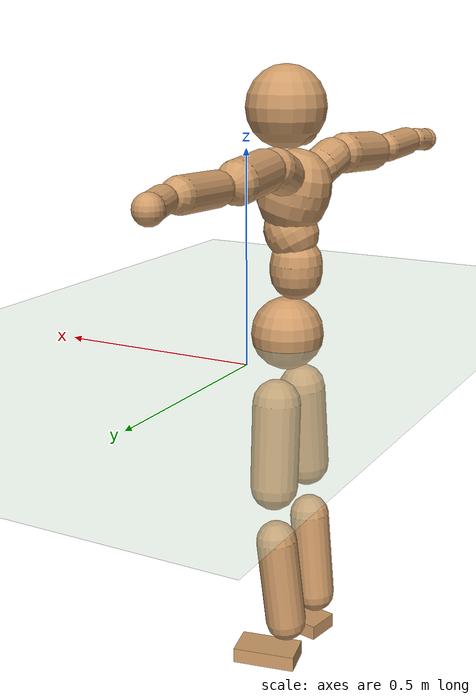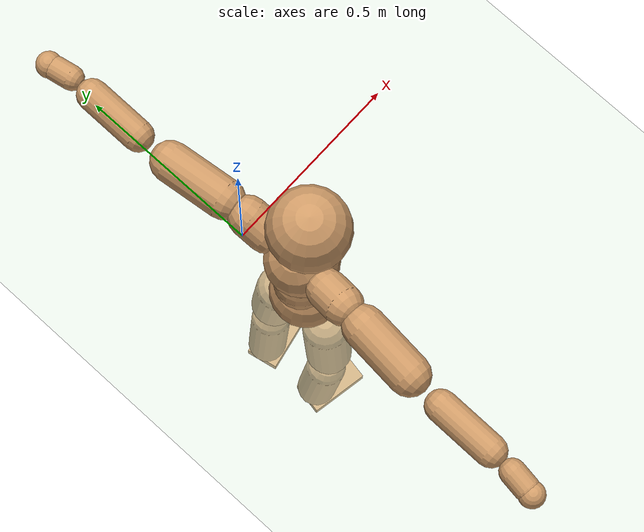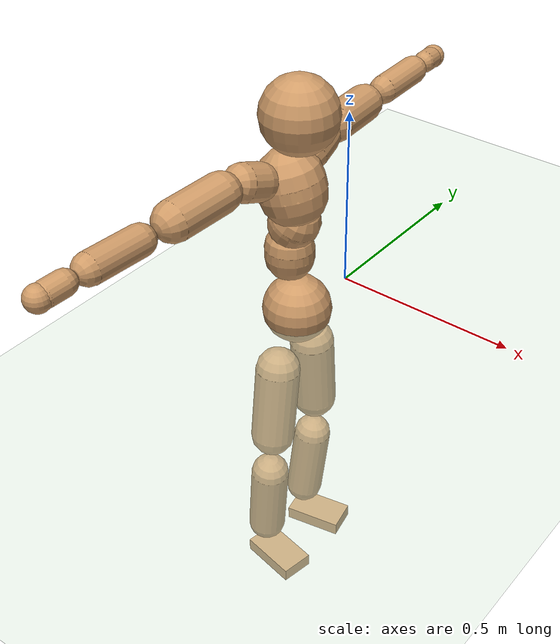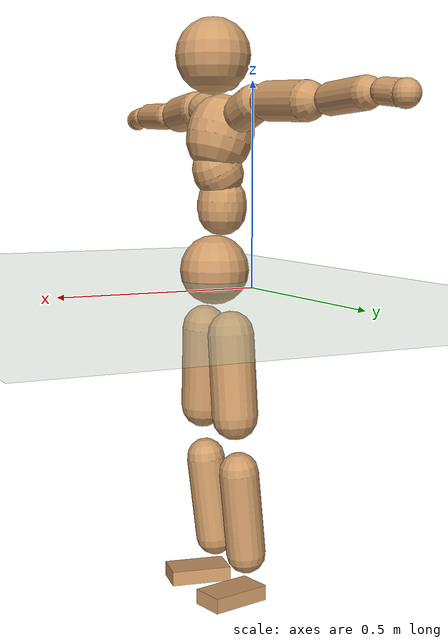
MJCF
<mujoco model="humanoid">
  <compiler coordinate="local"/>
  <default>
    <joint damping="0.0" armature="0.01" stiffness="0.0" limited="true"/>
    <geom conaffinity="1" condim="3" contype="7" margin="0.001" rgba="0.8 0.6 .4 1"/>
  </default>
  <asset>
    <texture type="skybox" builtin="gradient" rgb1=".4 .5 .6" rgb2="0 0 0" width="100" height="100"/>
    <texture builtin="flat" height="1278" mark="cross" markrgb="1 1 1" name="texgeom" random="0.01" rgb1="0.8 0.6 0.4" rgb2="0.8 0.6 0.4" type="cube" width="127"/>
    <texture builtin="checker" height="100" name="texplane" rgb1="0 0 0" rgb2="0.8 0.8 0.8" type="2d" width="100"/>
    <material name="MatPlane" reflectance="0.5" shininess="1" specular="1" texrepeat="60 60" texture="texplane"/>
    <material name="geom" texture="texgeom" texuniform="true"/>
  </asset>
  <worldbody>
    <light cutoff="100" diffuse="1 1 1" dir="-0 0 -1.3" directional="true" exponent="1" pos="0 0 1.3" specular=".1 .1 .1"/>
    <geom conaffinity="1" condim="3" name="floor" pos="0 0 0" rgba="0.8 0.9 0.8 1" size="100 100 .2" type="plane" material="MatPlane"/>
    <body name="Pelvis" pos="-0.001 -0.2126 0.0267">
      <freejoint name="Pelvis"/>
      <geom type="sphere" contype="1" conaffinity="1" density="500" size="0.0916" pos="0.0000 0.0000 0.0000" name="Pelvis"/>
      <body name="L_Hip" pos="-0.0085 0.0704 -0.0893">
        <joint name="L_Hip_x" type="hinge" pos="0 0 0" axis="1 0 0" stiffness="800" damping="80" armature="0.02" range="-180.0000 180.0000"/>
        <joint name="L_Hip_y" type="hinge" pos="0 0 0" axis="0 1 0" stiffness="800" damping="80" armature="0.02" range="-180.0000 180.0000"/>
        <joint name="L_Hip_z" type="hinge" pos="0 0 0" axis="0 0 1" stiffness="800" damping="80" armature="0.02" range="-180.0000 180.0000"/>
        <geom type="capsule" contype="1" conaffinity="1" density="500" fromto="-0.0013 0.0061 -0.0722 -0.0051 0.0243 -0.2889" size="0.0604" name="L_Hip"/>
        <body name="L_Knee" pos="-0.0064 0.0304 -0.3611">
          <joint name="L_Knee_x" type="hinge" pos="0 0 0" axis="1 0 0" stiffness="800" damping="80" armature="0.02" range="-180.0000 180.0000"/>
          <joint name="L_Knee_y" type="hinge" pos="0 0 0" axis="0 1 0" stiffness="800" damping="80" armature="0.02" range="-180.0000 180.0000"/>
          <joint name="L_Knee_z" type="hinge" pos="0 0 0" axis="0 0 1" stiffness="800" damping="80" armature="0.02" range="-180.0000 180.0000"/>
          <geom type="capsule" contype="1" conaffinity="1" density="500" fromto="-0.0086 -0.0023 -0.0759 -0.0342 -0.0092 -0.3035" size="0.0523" name="L_Knee"/>
          <body name="L_Ankle" pos="-0.0428 -0.0115 -0.3794">
            <joint name="L_Ankle_x" type="hinge" pos="0 0 0" axis="1 0 0" stiffness="800" damping="80" armature="0.02" range="-180.0000 180.0000"/>
            <joint name="L_Ankle_y" type="hinge" pos="0 0 0" axis="0 1 0" stiffness="800" damping="80" armature="0.02" range="-180.0000 180.0000"/>
            <joint name="L_Ankle_z" type="hinge" pos="0 0 0" axis="0 0 1" stiffness="800" damping="80" armature="0.02" range="-180.0000 180.0000"/>
            <geom type="box" contype="1" conaffinity="1" density="500" pos="0.0568 0.0115 -0.0271" size="0.0813 0.0452 0.0199" quat="0.9951 0.0000 0.0000 0.0993" name="L_Ankle"/>
            <body name="L_Toe" pos="0.1136 0.0229 -0.0541">
              <joint name="L_Toe_x" type="hinge" pos="0 0 0" axis="1 0 0" stiffness="500" damping="50" armature="0.02" range="-180.0000 180.0000"/>
              <joint name="L_Toe_y" type="hinge" pos="0 0 0" axis="0 1 0" stiffness="500" damping="50" armature="0.02" range="-180.0000 180.0000"/>
              <joint name="L_Toe_z" type="hinge" pos="0 0 0" axis="0 0 1" stiffness="500" damping="50" armature="0.02" range="-180.0000 180.0000"/>
              <geom type="box" contype="1" conaffinity="1" density="500" pos="0.0000 0.0000 0.0265" size="0.0009 0.0023 0.001" quat="0.9944 0.0000 0.0000 0.1059" name="L_Toe"/>
            </body>
          </body>
        </body>
      </body>
      <body name="R_Hip" pos="-0.0053 -0.068 -0.0887">
        <joint name="R_Hip_x" type="hinge" pos="0 0 0" axis="1 0 0" stiffness="800" damping="80" armature="0.02" range="-180.0000 180.0000"/>
        <joint name="R_Hip_y" type="hinge" pos="0 0 0" axis="0 1 0" stiffness="800" damping="80" armature="0.02" range="-180.0000 180.0000"/>
        <joint name="R_Hip_z" type="hinge" pos="0 0 0" axis="0 0 1" stiffness="800" damping="80" armature="0.02" range="-180.0000 180.0000"/>
        <geom type="capsule" contype="1" conaffinity="1" density="500" fromto="-0.0018 -0.0071 -0.0735 -0.0071 -0.0286 -0.2942" size="0.0597" name="R_Hip"/>
        <body name="R_Knee" pos="-0.0089 -0.0357 -0.3677">
          <joint name="R_Knee_x" type="hinge" pos="0 0 0" axis="1 0 0" stiffness="800" damping="80" armature="0.02" range="-180.0000 180.0000"/>
          <joint name="R_Knee_y" type="hinge" pos="0 0 0" axis="0 1 0" stiffness="800" damping="80" armature="0.02" range="-180.0000 180.0000"/>
          <joint name="R_Knee_z" type="hinge" pos="0 0 0" axis="0 0 1" stiffness="800" damping="80" armature="0.02" range="-180.0000 180.0000"/>
          <geom type="capsule" contype="1" conaffinity="1" density="500" fromto="-0.0082 0.0028 -0.0759 -0.0329 0.0113 -0.3037" size="0.0526" name="R_Knee"/>
          <body name="R_Ankle" pos="-0.0411 0.0141 -0.3796">
            <joint name="R_Ankle_x" type="hinge" pos="0 0 0" axis="1 0 0" stiffness="800" damping="80" armature="0.02" range="-180.0000 180.0000"/>
            <joint name="R_Ankle_y" type="hinge" pos="0 0 0" axis="0 1 0" stiffness="800" damping="80" armature="0.02" range="-180.0000 180.0000"/>
            <joint name="R_Ankle_z" type="hinge" pos="0 0 0" axis="0 0 1" stiffness="800" damping="80" armature="0.02" range="-180.0000 180.0000"/>
            <geom type="box" contype="1" conaffinity="1" density="500" pos="0.0585 -0.0107 -0.0229" size="0.0824 0.0458 0.0196" quat="0.9959 0.0000 0.0000 -0.0901" name="R_Ankle"/>
            <body name="R_Toe" pos="0.1171 -0.0214 -0.0459">
              <joint name="R_Toe_x" type="hinge" pos="0 0 0" axis="1 0 0" stiffness="500" damping="50" armature="0.02" range="-180.0000 180.0000"/>
              <joint name="R_Toe_y" type="hinge" pos="0 0 0" axis="0 1 0" stiffness="500" damping="50" armature="0.02" range="-180.0000 180.0000"/>
              <joint name="R_Toe_z" type="hinge" pos="0 0 0" axis="0 0 1" stiffness="500" damping="50" armature="0.02" range="-180.0000 180.0000"/>
              <geom type="box" contype="1" conaffinity="1" density="500" pos="0.0000 0.0000 0.0249" size="0.0009 0.0023 0.0011" quat="0.9968 0.0000 0.0000 -0.0805" name="R_Toe"/>
            </body>
          </body>
        </body>
      </body>
      <body name="Torso" pos="-0.0214 -0.0026 0.1028">
        <joint name="Torso_x" type="hinge" pos="0 0 0" axis="1 0 0" stiffness="1000" damping="100" armature="0.02" range="-180.0000 180.0000"/>
        <joint name="Torso_y" type="hinge" pos="0 0 0" axis="0 1 0" stiffness="1000" damping="100" armature="0.02" range="-180.0000 180.0000"/>
        <joint name="Torso_z" type="hinge" pos="0 0 0" axis="0 0 1" stiffness="1000" damping="100" armature="0.02" range="-180.0000 180.0000"/>
        <geom type="capsule" contype="1" conaffinity="1" density="500" fromto="-0.0007 0.0022 0.0773 -0.0005 0.0015 0.0515" size="0.065007" name="Torso"/>
        <body name="Spine" pos="-0.0012 0.0037 0.1288">
          <joint name="Spine_x" type="hinge" pos="0 0 0" axis="1 0 0" stiffness="1000" damping="100" armature="0.02" range="-180.0000 180.0000"/>
          <joint name="Spine_y" type="hinge" pos="0 0 0" axis="0 1 0" stiffness="1000" damping="100" armature="0.02" range="-180.0000 180.0000"/>
          <joint name="Spine_z" type="hinge" pos="0 0 0" axis="0 0 1" stiffness="1000" damping="100" armature="0.02" range="-180.0000 180.0000"/>
          <geom type="capsule" contype="1" conaffinity="1" density="500" fromto="0.0167 0.0013 0.0296 0.0111 0.0008 0.0197" size="0.065751" name="Spine"/>
          <body name="Chest" pos="0.0278 0.0021 0.0493">
            <joint name="Chest_x" type="hinge" pos="0 0 0" axis="1 0 0" stiffness="1000" damping="100" armature="0.02" range="-180.0000 180.0000"/>
            <joint name="Chest_y" type="hinge" pos="0 0 0" axis="0 1 0" stiffness="1000" damping="100" armature="0.02" range="-180.0000 180.0000"/>
            <joint name="Chest_z" type="hinge" pos="0 0 0" axis="0 0 1" stiffness="1000" damping="100" armature="0.02" range="-180.0000 180.0000"/>
            <geom type="capsule" contype="1" conaffinity="1" density="500" fromto="-0.0255 -0.0007 0.0879 -0.0170 -0.0005 0.0586" size="0.08742" name="Chest"/>
            <body name="Neck" pos="-0.0493 -0.0018 0.2073">
              <joint name="Neck_x" type="hinge" pos="0 0 0" axis="1 0 0" stiffness="500" damping="50" armature="0.02" range="-180.0000 180.0000"/>
              <joint name="Neck_y" type="hinge" pos="0 0 0" axis="0 1 0" stiffness="500" damping="50" armature="0.02" range="-180.0000 180.0000"/>
              <joint name="Neck_z" type="hinge" pos="0 0 0" axis="0 0 1" stiffness="500" damping="50" armature="0.02" range="-180.0000 180.0000"/>
              <geom type="capsule" contype="1" conaffinity="1" density="500" fromto="0.0101 0.0007 0.0126 0.0405 0.0029 0.0502" size="0.038037" name="Neck"/>
              <body name="Head" pos="0.0506 0.0037 0.0628">
                <joint name="Head_x" type="hinge" pos="0 0 0" axis="1 0 0" stiffness="500" damping="50" armature="0.02" range="-180.0000 180.0000"/>
                <joint name="Head_y" type="hinge" pos="0 0 0" axis="0 1 0" stiffness="500" damping="50" armature="0.02" range="-180.0000 180.0000"/>
                <joint name="Head_z" type="hinge" pos="0 0 0" axis="0 0 1" stiffness="500" damping="50" armature="0.02" range="-180.0000 180.0000"/>
                <geom type="sphere" contype="1" conaffinity="1" density="500" size="0.0981" pos="0.0000 0.0000 0.0000" name="Head"/>
              </body>
            </body>
            <body name="L_Thorax" pos="-0.0366 0.0754 0.1173">
              <joint name="L_Thorax_x" type="hinge" pos="0 0 0" axis="1 0 0" stiffness="500" damping="50" armature="0.02" range="-180.0000 180.0000"/>
              <joint name="L_Thorax_y" type="hinge" pos="0 0 0" axis="0 1 0" stiffness="500" damping="50" armature="0.02" range="-180.0000 180.0000"/>
              <joint name="L_Thorax_z" type="hinge" pos="0 0 0" axis="0 0 1" stiffness="500" damping="50" armature="0.02" range="-180.0000 180.0000"/>
              <geom type="capsule" contype="1" conaffinity="1" density="500" fromto="-0.0015 0.0171 0.0063 -0.0058 0.0682 0.0251" size="0.0493" name="L_Thorax"/>
              <body name="L_Shoulder" pos="-0.0073 0.0853 0.0313">
                <joint name="L_Shoulder_x" type="hinge" pos="0 0 0" axis="1 0 0" stiffness="500" damping="50" armature="0.02" range="-720.0000 720.0000"/>
                <joint name="L_Shoulder_y" type="hinge" pos="0 0 0" axis="0 1 0" stiffness="500" damping="50" armature="0.02" range="-720.0000 720.0000"/>
                <joint name="L_Shoulder_z" type="hinge" pos="0 0 0" axis="0 0 1" stiffness="500" damping="50" armature="0.02" range="-720.0000 720.0000"/>
                <geom type="capsule" contype="1" conaffinity="1" density="500" fromto="-0.0054 0.0498 -0.0023 -0.0218 0.1994 -0.0092" size="0.0492" name="L_Shoulder"/>
                <body name="L_Elbow" pos="-0.0272 0.2492 -0.0115">
                  <joint name="L_Elbow_x" type="hinge" pos="0 0 0" axis="1 0 0" stiffness="500" damping="50" armature="0.02" range="-720.0000 720.0000"/>
                  <joint name="L_Elbow_y" type="hinge" pos="0 0 0" axis="0 1 0" stiffness="500" damping="50" armature="0.02" range="-720.0000 720.0000"/>
                  <joint name="L_Elbow_z" type="hinge" pos="0 0 0" axis="0 0 1" stiffness="500" damping="50" armature="0.02" range="-720.0000 720.0000"/>
                  <geom type="capsule" contype="1" conaffinity="1" density="500" fromto="-0.0000 0.0470 0.0017 -0.0001 0.1882 0.0070" size="0.0383" name="L_Elbow"/>
                  <body name="L_Wrist" pos="-0.0002 0.2352 0.0087">
                    <joint name="L_Wrist_x" type="hinge" pos="0 0 0" axis="1 0 0" stiffness="300" damping="30" armature="0.02" range="-180.0000 180.0000"/>
                    <joint name="L_Wrist_y" type="hinge" pos="0 0 0" axis="0 1 0" stiffness="300" damping="30" armature="0.02" range="-180.0000 180.0000"/>
                    <joint name="L_Wrist_z" type="hinge" pos="0 0 0" axis="0 0 1" stiffness="300" damping="30" armature="0.02" range="-180.0000 180.0000"/>
                    <geom type="capsule" contype="1" conaffinity="1" density="500" fromto="-0.0026 0.0158 -0.0019 -0.0104 0.0631 -0.0076" size="0.0298" name="L_Wrist"/>
                    <body name="L_Hand" pos="-0.0131 0.0788 -0.0096">
                      <joint name="L_Hand_x" type="hinge" pos="0 0 0" axis="1 0 0" stiffness="300" damping="30" armature="0.02" range="-180.0000 180.0000"/>
                      <joint name="L_Hand_y" type="hinge" pos="0 0 0" axis="0 1 0" stiffness="300" damping="30" armature="0.02" range="-180.0000 180.0000"/>
                      <joint name="L_Hand_z" type="hinge" pos="0 0 0" axis="0 0 1" stiffness="300" damping="30" armature="0.02" range="-180.0000 180.0000"/>
                      <geom type="sphere" contype="1" conaffinity="1" density="500" size="0.0318" pos="0.0000 0.0000 0.0000" name="L_Hand"/>
                    </body>
                  </body>
                </body>
              </body>
            </body>
            <body name="R_Thorax" pos="-0.0417 -0.0771 0.1149">
              <joint name="R_Thorax_x" type="hinge" pos="0 0 0" axis="1 0 0" stiffness="500" damping="50" armature="0.02" range="-180.0000 180.0000"/>
              <joint name="R_Thorax_y" type="hinge" pos="0 0 0" axis="0 1 0" stiffness="500" damping="50" armature="0.02" range="-180.0000 180.0000"/>
              <joint name="R_Thorax_z" type="hinge" pos="0 0 0" axis="0 0 1" stiffness="500" damping="50" armature="0.02" range="-180.0000 180.0000"/>
              <geom type="capsule" contype="1" conaffinity="1" density="500" fromto="-0.0020 -0.0179 0.0065 -0.0081 -0.0714 0.0260" size="0.0484" name="R_Thorax"/>
              <body name="R_Shoulder" pos="-0.0101 -0.0893 0.0325">
                <joint name="R_Shoulder_x" type="hinge" pos="0 0 0" axis="1 0 0" stiffness="500" damping="50" armature="0.02" range="-720.0000 720.0000"/>
                <joint name="R_Shoulder_y" type="hinge" pos="0 0 0" axis="0 1 0" stiffness="500" damping="50" armature="0.02" range="-720.0000 720.0000"/>
                <joint name="R_Shoulder_z" type="hinge" pos="0 0 0" axis="0 0 1" stiffness="500" damping="50" armature="0.02" range="-720.0000 720.0000"/>
                <geom type="capsule" contype="1" conaffinity="1" density="500" fromto="-0.0040 -0.0488 -0.0026 -0.0158 -0.1951 -0.0103" size="0.0506" name="R_Shoulder"/>
                <body name="R_Elbow" pos="-0.0198 -0.2439 -0.0128">
                  <joint name="R_Elbow_x" type="hinge" pos="0 0 0" axis="1 0 0" stiffness="500" damping="50" armature="0.02" range="-720.0000 720.0000"/>
                  <joint name="R_Elbow_y" type="hinge" pos="0 0 0" axis="0 1 0" stiffness="500" damping="50" armature="0.02" range="-720.0000 720.0000"/>
                  <joint name="R_Elbow_z" type="hinge" pos="0 0 0" axis="0 0 1" stiffness="500" damping="50" armature="0.02" range="-720.0000 720.0000"/>
                  <geom type="capsule" contype="1" conaffinity="1" density="500" fromto="-0.0007 -0.0485 0.0017 -0.0030 -0.1942 0.0067" size="0.0385" name="R_Elbow"/>
                  <body name="R_Wrist" pos="-0.0037 -0.2427 0.0083">
                    <joint name="R_Wrist_x" type="hinge" pos="0 0 0" axis="1 0 0" stiffness="300" damping="30" armature="0.02" range="-180.0000 180.0000"/>
                    <joint name="R_Wrist_y" type="hinge" pos="0 0 0" axis="0 1 0" stiffness="300" damping="30" armature="0.02" range="-180.0000 180.0000"/>
                    <joint name="R_Wrist_z" type="hinge" pos="0 0 0" axis="0 0 1" stiffness="300" damping="30" armature="0.02" range="-180.0000 180.0000"/>
                    <geom type="capsule" contype="1" conaffinity="1" density="500" fromto="-0.0021 -0.0159 -0.0014 -0.0082 -0.0637 -0.0057" size="0.0306" name="R_Wrist"/>
                    <body name="R_Hand" pos="-0.0103 -0.0796 -0.0072">
                      <joint name="R_Hand_x" type="hinge" pos="0 0 0" axis="1 0 0" stiffness="300" damping="30" armature="0.02" range="-180.0000 180.0000"/>
                      <joint name="R_Hand_y" type="hinge" pos="0 0 0" axis="0 1 0" stiffness="300" damping="30" armature="0.02" range="-180.0000 180.0000"/>
                      <joint name="R_Hand_z" type="hinge" pos="0 0 0" axis="0 0 1" stiffness="300" damping="30" armature="0.02" range="-180.0000 180.0000"/>
                      <geom type="sphere" contype="1" conaffinity="1" density="500" size="0.0320" pos="0.0000 0.0000 0.0000" name="R_Hand"/>
                    </body>
                  </body>
                </body>
              </body>
            </body>
          </body>
        </body>
      </body>
    </body>
  </worldbody>
  <actuator>
    <motor name="L_Hip_x" joint="L_Hip_x" gear="500"/>
    <motor name="L_Hip_y" joint="L_Hip_y" gear="500"/>
    <motor name="L_Hip_z" joint="L_Hip_z" gear="500"/>
    <motor name="L_Knee_x" joint="L_Knee_x" gear="500"/>
    <motor name="L_Knee_y" joint="L_Knee_y" gear="500"/>
    <motor name="L_Knee_z" joint="L_Knee_z" gear="500"/>
    <motor name="L_Ankle_x" joint="L_Ankle_x" gear="500"/>
    <motor name="L_Ankle_y" joint="L_Ankle_y" gear="500"/>
    <motor name="L_Ankle_z" joint="L_Ankle_z" gear="500"/>
    <motor name="L_Toe_x" joint="L_Toe_x" gear="500"/>
    <motor name="L_Toe_y" joint="L_Toe_y" gear="500"/>
    <motor name="L_Toe_z" joint="L_Toe_z" gear="500"/>
    <motor name="R_Hip_x" joint="R_Hip_x" gear="500"/>
    <motor name="R_Hip_y" joint="R_Hip_y" gear="500"/>
    <motor name="R_Hip_z" joint="R_Hip_z" gear="500"/>
    <motor name="R_Knee_x" joint="R_Knee_x" gear="500"/>
    <motor name="R_Knee_y" joint="R_Knee_y" gear="500"/>
    <motor name="R_Knee_z" joint="R_Knee_z" gear="500"/>
    <motor name="R_Ankle_x" joint="R_Ankle_x" gear="500"/>
    <motor name="R_Ankle_y" joint="R_Ankle_y" gear="500"/>
    <motor name="R_Ankle_z" joint="R_Ankle_z" gear="500"/>
    <motor name="R_Toe_x" joint="R_Toe_x" gear="500"/>
    <motor name="R_Toe_y" joint="R_Toe_y" gear="500"/>
    <motor name="R_Toe_z" joint="R_Toe_z" gear="500"/>
    <motor name="Torso_x" joint="Torso_x" gear="500"/>
    <motor name="Torso_y" joint="Torso_y" gear="500"/>
    <motor name="Torso_z" joint="Torso_z" gear="500"/>
    <motor name="Spine_x" joint="Spine_x" gear="500"/>
    <motor name="Spine_y" joint="Spine_y" gear="500"/>
    <motor name="Spine_z" joint="Spine_z" gear="500"/>
    <motor name="Chest_x" joint="Chest_x" gear="500"/>
    <motor name="Chest_y" joint="Chest_y" gear="500"/>
    <motor name="Chest_z" joint="Chest_z" gear="500"/>
    <motor name="Neck_x" joint="Neck_x" gear="500"/>
    <motor name="Neck_y" joint="Neck_y" gear="500"/>
    <motor name="Neck_z" joint="Neck_z" gear="500"/>
    <motor name="Head_x" joint="Head_x" gear="500"/>
    <motor name="Head_y" joint="Head_y" gear="500"/>
    <motor name="Head_z" joint="Head_z" gear="500"/>
    <motor name="L_Thorax_x" joint="L_Thorax_x" gear="500"/>
    <motor name="L_Thorax_y" joint="L_Thorax_y" gear="500"/>
    <motor name="L_Thorax_z" joint="L_Thorax_z" gear="500"/>
    <motor name="L_Shoulder_x" joint="L_Shoulder_x" gear="500"/>
    <motor name="L_Shoulder_y" joint="L_Shoulder_y" gear="500"/>
    <motor name="L_Shoulder_z" joint="L_Shoulder_z" gear="500"/>
    <motor name="L_Elbow_x" joint="L_Elbow_x" gear="500"/>
    <motor name="L_Elbow_y" joint="L_Elbow_y" gear="500"/>
    <motor name="L_Elbow_z" joint="L_Elbow_z" gear="500"/>
    <motor name="L_Wrist_x" joint="L_Wrist_x" gear="500"/>
    <motor name="L_Wrist_y" joint="L_Wrist_y" gear="500"/>
    <motor name="L_Wrist_z" joint="L_Wrist_z" gear="500"/>
    <motor name="L_Hand_x" joint="L_Hand_x" gear="500"/>
    <motor name="L_Hand_y" joint="L_Hand_y" gear="500"/>
    <motor name="L_Hand_z" joint="L_Hand_z" gear="500"/>
    <motor name="R_Thorax_x" joint="R_Thorax_x" gear="500"/>
    <motor name="R_Thorax_y" joint="R_Thorax_y" gear="500"/>
    <motor name="R_Thorax_z" joint="R_Thorax_z" gear="500"/>
    <motor name="R_Shoulder_x" joint="R_Shoulder_x" gear="500"/>
    <motor name="R_Shoulder_y" joint="R_Shoulder_y" gear="500"/>
    <motor name="R_Shoulder_z" joint="R_Shoulder_z" gear="500"/>
    <motor name="R_Elbow_x" joint="R_Elbow_x" gear="500"/>
    <motor name="R_Elbow_y" joint="R_Elbow_y" gear="500"/>
    <motor name="R_Elbow_z" joint="R_Elbow_z" gear="500"/>
    <motor name="R_Wrist_x" joint="R_Wrist_x" gear="500"/>
    <motor name="R_Wrist_y" joint="R_Wrist_y" gear="500"/>
    <motor name="R_Wrist_z" joint="R_Wrist_z" gear="500"/>
    <motor name="R_Hand_x" joint="R_Hand_x" gear="500"/>
    <motor name="R_Hand_y" joint="R_Hand_y" gear="500"/>
    <motor name="R_Hand_z" joint="R_Hand_z" gear="500"/>
  </actuator>
  <contact>
    <exclude body1="Torso" body2="Chest"/>
    <exclude body1="Head" body2="Chest"/>
    <exclude body1="R_Knee" body2="R_Toe"/>
    <exclude body1="R_Knee" body2="L_Ankle"/>
    <exclude body1="R_Knee" body2="L_Toe"/>
    <exclude body1="L_Knee" body2="L_Toe"/>
    <exclude body1="L_Knee" body2="R_Ankle"/>
    <exclude body1="L_Knee" body2="R_Toe"/>
    <exclude body1="L_Shoulder" body2="Chest"/>
    <exclude body1="R_Shoulder" body2="Chest"/>
  </contact>
  <sensor/>
  <size njmax="700" nconmax="700"/>
</mujoco>
